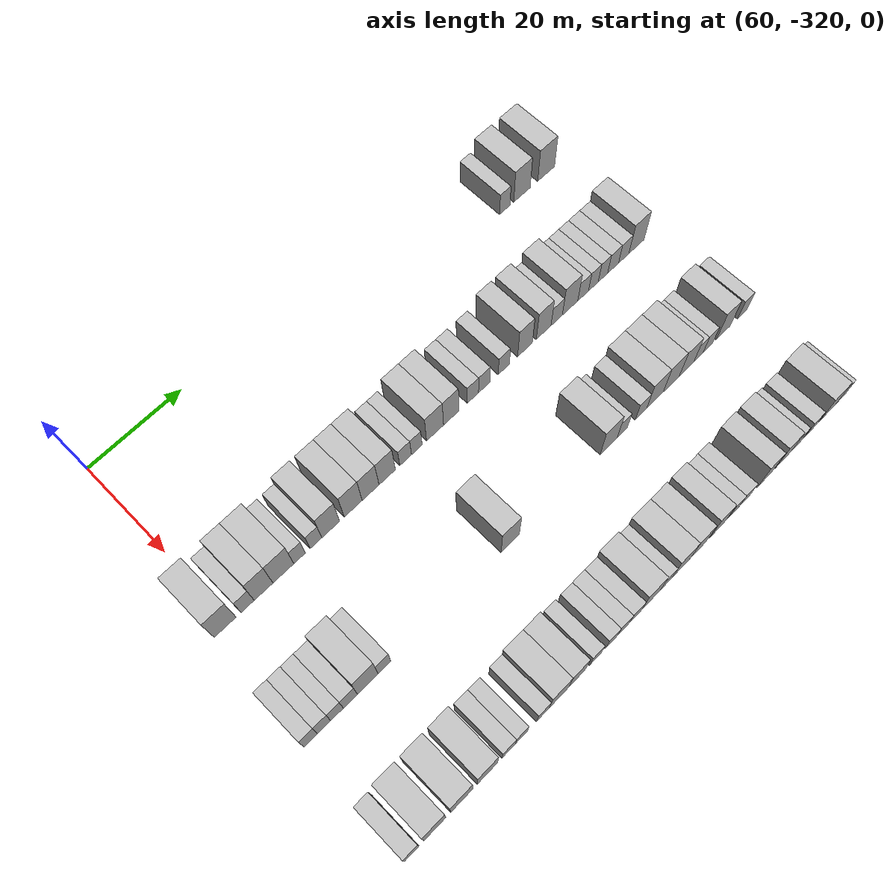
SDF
<sdf version="1.6">
 <world name="default">
  <model name="building_396">
   <static>1</static>
   <pose>69.0000 -236.1862 0 0.000000 0.000000 0.000000</pose>
   <link name="link">
    <pose>0 0 3.00 0 0 0</pose>
    <collision name="collision"><geometry><box><size>10.0000 2.6819 6.0000</size></box></geometry></collision>
    <visual name="visual">
     <cast_shadows>0</cast_shadows>
     <geometry><box><size>10.0000 2.6819 6.0000</size></box></geometry>
     <material>
      <script>
       <uri>model://HANNAS_wall/materials/scripts</uri>
       <uri>model://HANNAS_wall/materials/textures</uri>
       <name>vrc/HANNAS_wall</name>
      </script>
     </material>
    </visual>
   </link>
  </model>
  <model name="building_397">
   <static>1</static>
   <pose>69.0000 -231.6980 0 0.000000 0.000000 0.000000</pose>
   <link name="link">
    <pose>0 0 4.50 0 0 0</pose>
    <collision name="collision"><geometry><box><size>10.0000 4.2945 9.0000</size></box></geometry></collision>
    <visual name="visual">
     <cast_shadows>0</cast_shadows>
     <geometry><box><size>10.0000 4.2945 9.0000</size></box></geometry>
     <material>
      <script>
       <uri>model://HANNAS_wall/materials/scripts</uri>
       <uri>model://HANNAS_wall/materials/textures</uri>
       <name>vrc/HANNAS_wall</name>
      </script>
     </material>
    </visual>
   </link>
  </model>
  <model name="building_398">
   <static>1</static>
   <pose>69.0000 -225.3103 0 0.000000 0.000000 0.000000</pose>
   <link name="link">
    <pose>0 0 4.50 0 0 0</pose>
    <collision name="collision"><geometry><box><size>10.0000 4.4809 9.0000</size></box></geometry></collision>
    <visual name="visual">
     <cast_shadows>0</cast_shadows>
     <geometry><box><size>10.0000 4.4809 9.0000</size></box></geometry>
     <material>
      <script>
       <uri>model://HANNAS_wall/materials/scripts</uri>
       <uri>model://HANNAS_wall/materials/textures</uri>
       <name>vrc/HANNAS_wall</name>
      </script>
     </material>
    </visual>
   </link>
  </model>
  <model name="building_553">
   <static>1</static>
   <pose>91.0000 -321.1045 0 0.000000 0.000000 0.000000</pose>
   <link name="link">
    <pose>0 0 4.50 0 0 0</pose>
    <collision name="collision"><geometry><box><size>10.0000 4.4478 9.0000</size></box></geometry></collision>
    <visual name="visual">
     <cast_shadows>0</cast_shadows>
     <geometry><box><size>10.0000 4.4478 9.0000</size></box></geometry>
     <material>
      <script>
       <uri>model://HANNAS_wall/materials/scripts</uri>
       <uri>model://HANNAS_wall/materials/textures</uri>
       <name>vrc/HANNAS_wall</name>
      </script>
     </material>
    </visual>
   </link>
  </model>
  <model name="building_554">
   <static>1</static>
   <pose>91.0000 -316.5286 0 0.000000 0.000000 0.000000</pose>
   <link name="link">
    <pose>0 0 3.00 0 0 0</pose>
    <collision name="collision"><geometry><box><size>10.0000 2.7039 6.0000</size></box></geometry></collision>
    <visual name="visual">
     <cast_shadows>0</cast_shadows>
     <geometry><box><size>10.0000 2.7039 6.0000</size></box></geometry>
     <material>
      <script>
       <uri>model://HANNAS_wall/materials/scripts</uri>
       <uri>model://HANNAS_wall/materials/textures</uri>
       <name>vrc/HANNAS_wall</name>
      </script>
     </material>
    </visual>
   </link>
  </model>
  <model name="building_555">
   <static>1</static>
   <pose>91.0000 -313.2276 0 0.000000 0.000000 0.000000</pose>
   <link name="link">
    <pose>0 0 4.50 0 0 0</pose>
    <collision name="collision"><geometry><box><size>10.0000 3.8981 9.0000</size></box></geometry></collision>
    <visual name="visual">
     <cast_shadows>0</cast_shadows>
     <geometry><box><size>10.0000 3.8981 9.0000</size></box></geometry>
     <material>
      <script>
       <uri>model://HANNAS_wall/materials/scripts</uri>
       <uri>model://HANNAS_wall/materials/textures</uri>
       <name>vrc/HANNAS_wall</name>
      </script>
     </material>
    </visual>
   </link>
  </model>
  <model name="building_556">
   <static>1</static>
   <pose>91.0000 -309.0797 0 0.000000 0.000000 0.000000</pose>
   <link name="link">
    <pose>0 0 4.50 0 0 0</pose>
    <collision name="collision"><geometry><box><size>10.0000 4.3976 9.0000</size></box></geometry></collision>
    <visual name="visual">
     <cast_shadows>0</cast_shadows>
     <geometry><box><size>10.0000 4.3976 9.0000</size></box></geometry>
     <material>
      <script>
       <uri>model://HANNAS_wall/materials/scripts</uri>
       <uri>model://HANNAS_wall/materials/textures</uri>
       <name>vrc/HANNAS_wall</name>
      </script>
     </material>
    </visual>
   </link>
  </model>
  <model name="building_557">
   <static>1</static>
   <pose>91.0000 -305.6493 0 0.000000 0.000000 0.000000</pose>
   <link name="link">
    <pose>0 0 3.00 0 0 0</pose>
    <collision name="collision"><geometry><box><size>10.0000 2.4632 6.0000</size></box></geometry></collision>
    <visual name="visual">
     <cast_shadows>0</cast_shadows>
     <geometry><box><size>10.0000 2.4632 6.0000</size></box></geometry>
     <material>
      <script>
       <uri>model://HANNAS_wall/materials/scripts</uri>
       <uri>model://HANNAS_wall/materials/textures</uri>
       <name>vrc/HANNAS_wall</name>
      </script>
     </material>
    </visual>
   </link>
  </model>
  <model name="building_558">
   <static>1</static>
   <pose>91.0000 -302.1671 0 0.000000 0.000000 0.000000</pose>
   <link name="link">
    <pose>0 0 3.00 0 0 0</pose>
    <collision name="collision"><geometry><box><size>10.0000 2.5014 6.0000</size></box></geometry></collision>
    <visual name="visual">
     <cast_shadows>0</cast_shadows>
     <geometry><box><size>10.0000 2.5014 6.0000</size></box></geometry>
     <material>
      <script>
       <uri>model://HANNAS_wall/materials/scripts</uri>
       <uri>model://HANNAS_wall/materials/textures</uri>
       <name>vrc/HANNAS_wall</name>
      </script>
     </material>
    </visual>
   </link>
  </model>
  <model name="building_559">
   <static>1</static>
   <pose>91.0000 -298.9748 0 0.000000 0.000000 0.000000</pose>
   <link name="link">
    <pose>0 0 4.50 0 0 0</pose>
    <collision name="collision"><geometry><box><size>10.0000 3.8832 9.0000</size></box></geometry></collision>
    <visual name="visual">
     <cast_shadows>0</cast_shadows>
     <geometry><box><size>10.0000 3.8832 9.0000</size></box></geometry>
     <material>
      <script>
       <uri>model://HANNAS_wall/materials/scripts</uri>
       <uri>model://HANNAS_wall/materials/textures</uri>
       <name>vrc/HANNAS_wall</name>
      </script>
     </material>
    </visual>
   </link>
  </model>
  <model name="building_560">
   <static>1</static>
   <pose>91.0000 -294.0656 0 0.000000 0.000000 0.000000</pose>
   <link name="link">
    <pose>0 0 4.50 0 0 0</pose>
    <collision name="collision"><geometry><box><size>10.0000 3.9353 9.0000</size></box></geometry></collision>
    <visual name="visual">
     <cast_shadows>0</cast_shadows>
     <geometry><box><size>10.0000 3.9353 9.0000</size></box></geometry>
     <material>
      <script>
       <uri>model://HANNAS_wall/materials/scripts</uri>
       <uri>model://HANNAS_wall/materials/textures</uri>
       <name>vrc/HANNAS_wall</name>
      </script>
     </material>
    </visual>
   </link>
  </model>
  <model name="building_561">
   <static>1</static>
   <pose>91.0000 -290.2150 0 0.000000 0.000000 0.000000</pose>
   <link name="link">
    <pose>0 0 4.50 0 0 0</pose>
    <collision name="collision"><geometry><box><size>10.0000 3.7659 9.0000</size></box></geometry></collision>
    <visual name="visual">
     <cast_shadows>0</cast_shadows>
     <geometry><box><size>10.0000 3.7659 9.0000</size></box></geometry>
     <material>
      <script>
       <uri>model://HANNAS_wall/materials/scripts</uri>
       <uri>model://HANNAS_wall/materials/textures</uri>
       <name>vrc/HANNAS_wall</name>
      </script>
     </material>
    </visual>
   </link>
  </model>
  <model name="building_562">
   <static>1</static>
   <pose>91.0000 -286.4882 0 0.000000 0.000000 0.000000</pose>
   <link name="link">
    <pose>0 0 4.50 0 0 0</pose>
    <collision name="collision"><geometry><box><size>10.0000 3.6876 9.0000</size></box></geometry></collision>
    <visual name="visual">
     <cast_shadows>0</cast_shadows>
     <geometry><box><size>10.0000 3.6876 9.0000</size></box></geometry>
     <material>
      <script>
       <uri>model://HANNAS_wall/materials/scripts</uri>
       <uri>model://HANNAS_wall/materials/textures</uri>
       <name>vrc/HANNAS_wall</name>
      </script>
     </material>
    </visual>
   </link>
  </model>
  <model name="building_563">
   <static>1</static>
   <pose>91.0000 -282.3115 0 0.000000 0.000000 0.000000</pose>
   <link name="link">
    <pose>0 0 3.00 0 0 0</pose>
    <collision name="collision"><geometry><box><size>10.0000 2.6657 6.0000</size></box></geometry></collision>
    <visual name="visual">
     <cast_shadows>0</cast_shadows>
     <geometry><box><size>10.0000 2.6657 6.0000</size></box></geometry>
     <material>
      <script>
       <uri>model://HANNAS_wall/materials/scripts</uri>
       <uri>model://HANNAS_wall/materials/textures</uri>
       <name>vrc/HANNAS_wall</name>
      </script>
     </material>
    </visual>
   </link>
  </model>
  <model name="building_564">
   <static>1</static>
   <pose>91.0000 -279.7541 0 0.000000 0.000000 0.000000</pose>
   <link name="link">
    <pose>0 0 3.00 0 0 0</pose>
    <collision name="collision"><geometry><box><size>10.0000 2.4491 6.0000</size></box></geometry></collision>
    <visual name="visual">
     <cast_shadows>0</cast_shadows>
     <geometry><box><size>10.0000 2.4491 6.0000</size></box></geometry>
     <material>
      <script>
       <uri>model://HANNAS_wall/materials/scripts</uri>
       <uri>model://HANNAS_wall/materials/textures</uri>
       <name>vrc/HANNAS_wall</name>
      </script>
     </material>
    </visual>
   </link>
  </model>
  <model name="building_565">
   <static>1</static>
   <pose>91.0000 -275.5521 0 0.000000 0.000000 0.000000</pose>
   <link name="link">
    <pose>0 0 4.50 0 0 0</pose>
    <collision name="collision"><geometry><box><size>10.0000 3.9550 9.0000</size></box></geometry></collision>
    <visual name="visual">
     <cast_shadows>0</cast_shadows>
     <geometry><box><size>10.0000 3.9550 9.0000</size></box></geometry>
     <material>
      <script>
       <uri>model://HANNAS_wall/materials/scripts</uri>
       <uri>model://HANNAS_wall/materials/textures</uri>
       <name>vrc/HANNAS_wall</name>
      </script>
     </material>
    </visual>
   </link>
  </model>
  <model name="building_566">
   <static>1</static>
   <pose>91.0000 -271.7664 0 0.000000 0.000000 0.000000</pose>
   <link name="link">
    <pose>0 0 4.50 0 0 0</pose>
    <collision name="collision"><geometry><box><size>10.0000 3.6163 9.0000</size></box></geometry></collision>
    <visual name="visual">
     <cast_shadows>0</cast_shadows>
     <geometry><box><size>10.0000 3.6163 9.0000</size></box></geometry>
     <material>
      <script>
       <uri>model://HANNAS_wall/materials/scripts</uri>
       <uri>model://HANNAS_wall/materials/textures</uri>
       <name>vrc/HANNAS_wall</name>
      </script>
     </material>
    </visual>
   </link>
  </model>
  <model name="building_567">
   <static>1</static>
   <pose>91.0000 -266.6282 0 0.000000 0.000000 0.000000</pose>
   <link name="link">
    <pose>0 0 3.00 0 0 0</pose>
    <collision name="collision"><geometry><box><size>10.0000 2.6601 6.0000</size></box></geometry></collision>
    <visual name="visual">
     <cast_shadows>0</cast_shadows>
     <geometry><box><size>10.0000 2.6601 6.0000</size></box></geometry>
     <material>
      <script>
       <uri>model://HANNAS_wall/materials/scripts</uri>
       <uri>model://HANNAS_wall/materials/textures</uri>
       <name>vrc/HANNAS_wall</name>
      </script>
     </material>
    </visual>
   </link>
  </model>
  <model name="building_568">
   <static>1</static>
   <pose>91.0000 -263.9202 0 0.000000 0.000000 0.000000</pose>
   <link name="link">
    <pose>0 0 3.00 0 0 0</pose>
    <collision name="collision"><geometry><box><size>10.0000 2.7560 6.0000</size></box></geometry></collision>
    <visual name="visual">
     <cast_shadows>0</cast_shadows>
     <geometry><box><size>10.0000 2.7560 6.0000</size></box></geometry>
     <material>
      <script>
       <uri>model://HANNAS_wall/materials/scripts</uri>
       <uri>model://HANNAS_wall/materials/textures</uri>
       <name>vrc/HANNAS_wall</name>
      </script>
     </material>
    </visual>
   </link>
  </model>
  <model name="building_569">
   <static>1</static>
   <pose>91.0000 -259.1785 0 0.000000 0.000000 0.000000</pose>
   <link name="link">
    <pose>0 0 3.00 0 0 0</pose>
    <collision name="collision"><geometry><box><size>10.0000 2.7274 6.0000</size></box></geometry></collision>
    <visual name="visual">
     <cast_shadows>0</cast_shadows>
     <geometry><box><size>10.0000 2.7274 6.0000</size></box></geometry>
     <material>
      <script>
       <uri>model://HANNAS_wall/materials/scripts</uri>
       <uri>model://HANNAS_wall/materials/textures</uri>
       <name>vrc/HANNAS_wall</name>
      </script>
     </material>
    </visual>
   </link>
  </model>
  <model name="building_570">
   <static>1</static>
   <pose>91.0000 -253.9969 0 0.000000 0.000000 0.000000</pose>
   <link name="link">
    <pose>0 0 4.50 0 0 0</pose>
    <collision name="collision"><geometry><box><size>10.0000 3.6359 9.0000</size></box></geometry></collision>
    <visual name="visual">
     <cast_shadows>0</cast_shadows>
     <geometry><box><size>10.0000 3.6359 9.0000</size></box></geometry>
     <material>
      <script>
       <uri>model://HANNAS_wall/materials/scripts</uri>
       <uri>model://HANNAS_wall/materials/textures</uri>
       <name>vrc/HANNAS_wall</name>
      </script>
     </material>
    </visual>
   </link>
  </model>
  <model name="building_571">
   <static>1</static>
   <pose>91.0000 -249.3434 0 0.000000 0.000000 0.000000</pose>
   <link name="link">
    <pose>0 0 4.50 0 0 0</pose>
    <collision name="collision"><geometry><box><size>10.0000 3.6710 9.0000</size></box></geometry></collision>
    <visual name="visual">
     <cast_shadows>0</cast_shadows>
     <geometry><box><size>10.0000 3.6710 9.0000</size></box></geometry>
     <material>
      <script>
       <uri>model://HANNAS_wall/materials/scripts</uri>
       <uri>model://HANNAS_wall/materials/textures</uri>
       <name>vrc/HANNAS_wall</name>
      </script>
     </material>
    </visual>
   </link>
  </model>
  <model name="building_572">
   <static>1</static>
   <pose>91.0000 -246.0819 0 0.000000 0.000000 0.000000</pose>
   <link name="link">
    <pose>0 0 3.00 0 0 0</pose>
    <collision name="collision"><geometry><box><size>10.0000 2.8520 6.0000</size></box></geometry></collision>
    <visual name="visual">
     <cast_shadows>0</cast_shadows>
     <geometry><box><size>10.0000 2.8520 6.0000</size></box></geometry>
     <material>
      <script>
       <uri>model://HANNAS_wall/materials/scripts</uri>
       <uri>model://HANNAS_wall/materials/textures</uri>
       <name>vrc/HANNAS_wall</name>
      </script>
     </material>
    </visual>
   </link>
  </model>
  <model name="building_573">
   <static>1</static>
   <pose>91.0000 -242.6725 0 0.000000 0.000000 0.000000</pose>
   <link name="link">
    <pose>0 0 4.50 0 0 0</pose>
    <collision name="collision"><geometry><box><size>10.0000 3.9669 9.0000</size></box></geometry></collision>
    <visual name="visual">
     <cast_shadows>0</cast_shadows>
     <geometry><box><size>10.0000 3.9669 9.0000</size></box></geometry>
     <material>
      <script>
       <uri>model://HANNAS_wall/materials/scripts</uri>
       <uri>model://HANNAS_wall/materials/textures</uri>
       <name>vrc/HANNAS_wall</name>
      </script>
     </material>
    </visual>
   </link>
  </model>
  <model name="building_574">
   <static>1</static>
   <pose>91.0000 -239.3024 0 0.000000 0.000000 0.000000</pose>
   <link name="link">
    <pose>0 0 3.00 0 0 0</pose>
    <collision name="collision"><geometry><box><size>10.0000 2.7734 6.0000</size></box></geometry></collision>
    <visual name="visual">
     <cast_shadows>0</cast_shadows>
     <geometry><box><size>10.0000 2.7734 6.0000</size></box></geometry>
     <material>
      <script>
       <uri>model://HANNAS_wall/materials/scripts</uri>
       <uri>model://HANNAS_wall/materials/textures</uri>
       <name>vrc/HANNAS_wall</name>
      </script>
     </material>
    </visual>
   </link>
  </model>
  <model name="building_575">
   <static>1</static>
   <pose>91.0000 -236.6583 0 0.000000 0.000000 0.000000</pose>
   <link name="link">
    <pose>0 0 3.00 0 0 0</pose>
    <collision name="collision"><geometry><box><size>10.0000 2.5148 6.0000</size></box></geometry></collision>
    <visual name="visual">
     <cast_shadows>0</cast_shadows>
     <geometry><box><size>10.0000 2.5148 6.0000</size></box></geometry>
     <material>
      <script>
       <uri>model://HANNAS_wall/materials/scripts</uri>
       <uri>model://HANNAS_wall/materials/textures</uri>
       <name>vrc/HANNAS_wall</name>
      </script>
     </material>
    </visual>
   </link>
  </model>
  <model name="building_576">
   <static>1</static>
   <pose>91.0000 -234.1624 0 0.000000 0.000000 0.000000</pose>
   <link name="link">
    <pose>0 0 3.00 0 0 0</pose>
    <collision name="collision"><geometry><box><size>10.0000 2.4770 6.0000</size></box></geometry></collision>
    <visual name="visual">
     <cast_shadows>0</cast_shadows>
     <geometry><box><size>10.0000 2.4770 6.0000</size></box></geometry>
     <material>
      <script>
       <uri>model://HANNAS_wall/materials/scripts</uri>
       <uri>model://HANNAS_wall/materials/textures</uri>
       <name>vrc/HANNAS_wall</name>
      </script>
     </material>
    </visual>
   </link>
  </model>
  <model name="building_577">
   <static>1</static>
   <pose>91.0000 -231.4938 0 0.000000 0.000000 0.000000</pose>
   <link name="link">
    <pose>0 0 3.00 0 0 0</pose>
    <collision name="collision"><geometry><box><size>10.0000 2.8602 6.0000</size></box></geometry></collision>
    <visual name="visual">
     <cast_shadows>0</cast_shadows>
     <geometry><box><size>10.0000 2.8602 6.0000</size></box></geometry>
     <material>
      <script>
       <uri>model://HANNAS_wall/materials/scripts</uri>
       <uri>model://HANNAS_wall/materials/textures</uri>
       <name>vrc/HANNAS_wall</name>
      </script>
     </material>
    </visual>
   </link>
  </model>
  <model name="building_578">
   <static>1</static>
   <pose>91.0000 -228.6935 0 0.000000 0.000000 0.000000</pose>
   <link name="link">
    <pose>0 0 3.00 0 0 0</pose>
    <collision name="collision"><geometry><box><size>10.0000 2.7405 6.0000</size></box></geometry></collision>
    <visual name="visual">
     <cast_shadows>0</cast_shadows>
     <geometry><box><size>10.0000 2.7405 6.0000</size></box></geometry>
     <material>
      <script>
       <uri>model://HANNAS_wall/materials/scripts</uri>
       <uri>model://HANNAS_wall/materials/textures</uri>
       <name>vrc/HANNAS_wall</name>
      </script>
     </material>
    </visual>
   </link>
  </model>
  <model name="building_579">
   <static>1</static>
   <pose>91.0000 -225.2813 0 0.000000 0.000000 0.000000</pose>
   <link name="link">
    <pose>0 0 4.50 0 0 0</pose>
    <collision name="collision"><geometry><box><size>10.0000 4.0839 9.0000</size></box></geometry></collision>
    <visual name="visual">
     <cast_shadows>0</cast_shadows>
     <geometry><box><size>10.0000 4.0839 9.0000</size></box></geometry>
     <material>
      <script>
       <uri>model://HANNAS_wall/materials/scripts</uri>
       <uri>model://HANNAS_wall/materials/textures</uri>
       <name>vrc/HANNAS_wall</name>
      </script>
     </material>
    </visual>
   </link>
  </model>
  <model name="building_745">
   <static>1</static>
   <pose>113.0000 -323.1824 0 0.000000 0.000000 0.000000</pose>
   <link name="link">
    <pose>0 0 3.00 0 0 0</pose>
    <collision name="collision"><geometry><box><size>10.0000 2.6926 6.0000</size></box></geometry></collision>
    <visual name="visual">
     <cast_shadows>0</cast_shadows>
     <geometry><box><size>10.0000 2.6926 6.0000</size></box></geometry>
     <material>
      <script>
       <uri>model://HANNAS_wall/materials/scripts</uri>
       <uri>model://HANNAS_wall/materials/textures</uri>
       <name>vrc/HANNAS_wall</name>
      </script>
     </material>
    </visual>
   </link>
  </model>
  <model name="building_746">
   <static>1</static>
   <pose>113.0000 -320.5082 0 0.000000 0.000000 0.000000</pose>
   <link name="link">
    <pose>0 0 3.00 0 0 0</pose>
    <collision name="collision"><geometry><box><size>10.0000 2.6559 6.0000</size></box></geometry></collision>
    <visual name="visual">
     <cast_shadows>0</cast_shadows>
     <geometry><box><size>10.0000 2.6559 6.0000</size></box></geometry>
     <material>
      <script>
       <uri>model://HANNAS_wall/materials/scripts</uri>
       <uri>model://HANNAS_wall/materials/textures</uri>
       <name>vrc/HANNAS_wall</name>
      </script>
     </material>
    </visual>
   </link>
  </model>
  <model name="building_747">
   <static>1</static>
   <pose>113.0000 -317.8884 0 0.000000 0.000000 0.000000</pose>
   <link name="link">
    <pose>0 0 3.00 0 0 0</pose>
    <collision name="collision"><geometry><box><size>10.0000 2.5836 6.0000</size></box></geometry></collision>
    <visual name="visual">
     <cast_shadows>0</cast_shadows>
     <geometry><box><size>10.0000 2.5836 6.0000</size></box></geometry>
     <material>
      <script>
       <uri>model://HANNAS_wall/materials/scripts</uri>
       <uri>model://HANNAS_wall/materials/textures</uri>
       <name>vrc/HANNAS_wall</name>
      </script>
     </material>
    </visual>
   </link>
  </model>
  <model name="building_748">
   <static>1</static>
   <pose>113.0000 -315.1580 0 0.000000 0.000000 0.000000</pose>
   <link name="link">
    <pose>0 0 3.00 0 0 0</pose>
    <collision name="collision"><geometry><box><size>10.0000 2.8773 6.0000</size></box></geometry></collision>
    <visual name="visual">
     <cast_shadows>0</cast_shadows>
     <geometry><box><size>10.0000 2.8773 6.0000</size></box></geometry>
     <material>
      <script>
       <uri>model://HANNAS_wall/materials/scripts</uri>
       <uri>model://HANNAS_wall/materials/textures</uri>
       <name>vrc/HANNAS_wall</name>
      </script>
     </material>
    </visual>
   </link>
  </model>
  <model name="building_749">
   <static>1</static>
   <pose>113.0000 -311.5731 0 0.000000 0.000000 0.000000</pose>
   <link name="link">
    <pose>0 0 4.50 0 0 0</pose>
    <collision name="collision"><geometry><box><size>10.0000 4.2927 9.0000</size></box></geometry></collision>
    <visual name="visual">
     <cast_shadows>0</cast_shadows>
     <geometry><box><size>10.0000 4.2927 9.0000</size></box></geometry>
     <material>
      <script>
       <uri>model://HANNAS_wall/materials/scripts</uri>
       <uri>model://HANNAS_wall/materials/textures</uri>
       <name>vrc/HANNAS_wall</name>
      </script>
     </material>
    </visual>
   </link>
  </model>
  <model name="building_750">
   <static>1</static>
   <pose>113.0000 -308.0757 0 0.000000 0.000000 0.000000</pose>
   <link name="link">
    <pose>0 0 3.00 0 0 0</pose>
    <collision name="collision"><geometry><box><size>10.0000 2.7019 6.0000</size></box></geometry></collision>
    <visual name="visual">
     <cast_shadows>0</cast_shadows>
     <geometry><box><size>10.0000 2.7019 6.0000</size></box></geometry>
     <material>
      <script>
       <uri>model://HANNAS_wall/materials/scripts</uri>
       <uri>model://HANNAS_wall/materials/textures</uri>
       <name>vrc/HANNAS_wall</name>
      </script>
     </material>
    </visual>
   </link>
  </model>
  <model name="building_751">
   <static>1</static>
   <pose>113.0000 -280.4572 0 0.000000 0.000000 0.000000</pose>
   <link name="link">
    <pose>0 0 4.50 0 0 0</pose>
    <collision name="collision"><geometry><box><size>10.0000 4.1784 9.0000</size></box></geometry></collision>
    <visual name="visual">
     <cast_shadows>0</cast_shadows>
     <geometry><box><size>10.0000 4.1784 9.0000</size></box></geometry>
     <material>
      <script>
       <uri>model://HANNAS_wall/materials/scripts</uri>
       <uri>model://HANNAS_wall/materials/textures</uri>
       <name>vrc/HANNAS_wall</name>
      </script>
     </material>
    </visual>
   </link>
  </model>
  <model name="building_752">
   <static>1</static>
   <pose>113.0000 -257.0394 0 0.000000 0.000000 0.000000</pose>
   <link name="link">
    <pose>0 0 4.50 0 0 0</pose>
    <collision name="collision"><geometry><box><size>10.0000 4.2191 9.0000</size></box></geometry></collision>
    <visual name="visual">
     <cast_shadows>0</cast_shadows>
     <geometry><box><size>10.0000 4.2191 9.0000</size></box></geometry>
     <material>
      <script>
       <uri>model://HANNAS_wall/materials/scripts</uri>
       <uri>model://HANNAS_wall/materials/textures</uri>
       <name>vrc/HANNAS_wall</name>
      </script>
     </material>
    </visual>
   </link>
  </model>
  <model name="building_753">
   <static>1</static>
   <pose>113.0000 -253.6898 0 0.000000 0.000000 0.000000</pose>
   <link name="link">
    <pose>0 0 3.00 0 0 0</pose>
    <collision name="collision"><geometry><box><size>10.0000 2.4802 6.0000</size></box></geometry></collision>
    <visual name="visual">
     <cast_shadows>0</cast_shadows>
     <geometry><box><size>10.0000 2.4802 6.0000</size></box></geometry>
     <material>
      <script>
       <uri>model://HANNAS_wall/materials/scripts</uri>
       <uri>model://HANNAS_wall/materials/textures</uri>
       <name>vrc/HANNAS_wall</name>
      </script>
     </material>
    </visual>
   </link>
  </model>
  <model name="building_754">
   <static>1</static>
   <pose>113.0000 -249.0412 0 0.000000 0.000000 0.000000</pose>
   <link name="link">
    <pose>0 0 3.00 0 0 0</pose>
    <collision name="collision"><geometry><box><size>10.0000 2.8171 6.0000</size></box></geometry></collision>
    <visual name="visual">
     <cast_shadows>0</cast_shadows>
     <geometry><box><size>10.0000 2.8171 6.0000</size></box></geometry>
     <material>
      <script>
       <uri>model://HANNAS_wall/materials/scripts</uri>
       <uri>model://HANNAS_wall/materials/textures</uri>
       <name>vrc/HANNAS_wall</name>
      </script>
     </material>
    </visual>
   </link>
  </model>
  <model name="building_755">
   <static>1</static>
   <pose>113.0000 -245.5284 0 0.000000 0.000000 0.000000</pose>
   <link name="link">
    <pose>0 0 4.50 0 0 0</pose>
    <collision name="collision"><geometry><box><size>10.0000 4.2085 9.0000</size></box></geometry></collision>
    <visual name="visual">
     <cast_shadows>0</cast_shadows>
     <geometry><box><size>10.0000 4.2085 9.0000</size></box></geometry>
     <material>
      <script>
       <uri>model://HANNAS_wall/materials/scripts</uri>
       <uri>model://HANNAS_wall/materials/textures</uri>
       <name>vrc/HANNAS_wall</name>
      </script>
     </material>
    </visual>
   </link>
  </model>
  <model name="building_756">
   <static>1</static>
   <pose>113.0000 -241.3600 0 0.000000 0.000000 0.000000</pose>
   <link name="link">
    <pose>0 0 4.50 0 0 0</pose>
    <collision name="collision"><geometry><box><size>10.0000 4.1283 9.0000</size></box></geometry></collision>
    <visual name="visual">
     <cast_shadows>0</cast_shadows>
     <geometry><box><size>10.0000 4.1283 9.0000</size></box></geometry>
     <material>
      <script>
       <uri>model://HANNAS_wall/materials/scripts</uri>
       <uri>model://HANNAS_wall/materials/textures</uri>
       <name>vrc/HANNAS_wall</name>
      </script>
     </material>
    </visual>
   </link>
  </model>
  <model name="building_757">
   <static>1</static>
   <pose>113.0000 -237.3916 0 0.000000 0.000000 0.000000</pose>
   <link name="link">
    <pose>0 0 4.50 0 0 0</pose>
    <collision name="collision"><geometry><box><size>10.0000 3.8085 9.0000</size></box></geometry></collision>
    <visual name="visual">
     <cast_shadows>0</cast_shadows>
     <geometry><box><size>10.0000 3.8085 9.0000</size></box></geometry>
     <material>
      <script>
       <uri>model://HANNAS_wall/materials/scripts</uri>
       <uri>model://HANNAS_wall/materials/textures</uri>
       <name>vrc/HANNAS_wall</name>
      </script>
     </material>
    </visual>
   </link>
  </model>
  <model name="building_758">
   <static>1</static>
   <pose>113.0000 -234.2842 0 0.000000 0.000000 0.000000</pose>
   <link name="link">
    <pose>0 0 3.00 0 0 0</pose>
    <collision name="collision"><geometry><box><size>10.0000 2.4064 6.0000</size></box></geometry></collision>
    <visual name="visual">
     <cast_shadows>0</cast_shadows>
     <geometry><box><size>10.0000 2.4064 6.0000</size></box></geometry>
     <material>
      <script>
       <uri>model://HANNAS_wall/materials/scripts</uri>
       <uri>model://HANNAS_wall/materials/textures</uri>
       <name>vrc/HANNAS_wall</name>
      </script>
     </material>
    </visual>
   </link>
  </model>
  <model name="building_759">
   <static>1</static>
   <pose>113.0000 -231.8033 0 0.000000 0.000000 0.000000</pose>
   <link name="link">
    <pose>0 0 3.00 0 0 0</pose>
    <collision name="collision"><geometry><box><size>10.0000 2.5555 6.0000</size></box></geometry></collision>
    <visual name="visual">
     <cast_shadows>0</cast_shadows>
     <geometry><box><size>10.0000 2.5555 6.0000</size></box></geometry>
     <material>
      <script>
       <uri>model://HANNAS_wall/materials/scripts</uri>
       <uri>model://HANNAS_wall/materials/textures</uri>
       <name>vrc/HANNAS_wall</name>
      </script>
     </material>
    </visual>
   </link>
  </model>
  <model name="building_760">
   <static>1</static>
   <pose>113.0000 -227.6621 0 0.000000 0.000000 0.000000</pose>
   <link name="link">
    <pose>0 0 4.50 0 0 0</pose>
    <collision name="collision"><geometry><box><size>10.0000 3.7268 9.0000</size></box></geometry></collision>
    <visual name="visual">
     <cast_shadows>0</cast_shadows>
     <geometry><box><size>10.0000 3.7268 9.0000</size></box></geometry>
     <material>
      <script>
       <uri>model://HANNAS_wall/materials/scripts</uri>
       <uri>model://HANNAS_wall/materials/textures</uri>
       <name>vrc/HANNAS_wall</name>
      </script>
     </material>
    </visual>
   </link>
  </model>
  <model name="building_761">
   <static>1</static>
   <pose>113.0000 -222.5280 0 0.000000 0.000000 0.000000</pose>
   <link name="link">
    <pose>0 0 3.00 0 0 0</pose>
    <collision name="collision"><geometry><box><size>10.0000 2.5413 6.0000</size></box></geometry></collision>
    <visual name="visual">
     <cast_shadows>0</cast_shadows>
     <geometry><box><size>10.0000 2.5413 6.0000</size></box></geometry>
     <material>
      <script>
       <uri>model://HANNAS_wall/materials/scripts</uri>
       <uri>model://HANNAS_wall/materials/textures</uri>
       <name>vrc/HANNAS_wall</name>
      </script>
     </material>
    </visual>
   </link>
  </model>
  <model name="building_934">
   <static>1</static>
   <pose>135.0000 -323.5894 0 0.000000 0.000000 0.000000</pose>
   <link name="link">
    <pose>0 0 3.00 0 0 0</pose>
    <collision name="collision"><geometry><box><size>10.0000 2.8747 6.0000</size></box></geometry></collision>
    <visual name="visual">
     <cast_shadows>0</cast_shadows>
     <geometry><box><size>10.0000 2.8747 6.0000</size></box></geometry>
     <material>
      <script>
       <uri>model://HANNAS_wall/materials/scripts</uri>
       <uri>model://HANNAS_wall/materials/textures</uri>
       <name>vrc/HANNAS_wall</name>
      </script>
     </material>
    </visual>
   </link>
  </model>
  <model name="building_935">
   <static>1</static>
   <pose>135.0000 -318.9397 0 0.000000 0.000000 0.000000</pose>
   <link name="link">
    <pose>0 0 4.50 0 0 0</pose>
    <collision name="collision"><geometry><box><size>10.0000 4.4247 9.0000</size></box></geometry></collision>
    <visual name="visual">
     <cast_shadows>0</cast_shadows>
     <geometry><box><size>10.0000 4.4247 9.0000</size></box></geometry>
     <material>
      <script>
       <uri>model://HANNAS_wall/materials/scripts</uri>
       <uri>model://HANNAS_wall/materials/textures</uri>
       <name>vrc/HANNAS_wall</name>
      </script>
     </material>
    </visual>
   </link>
  </model>
  <model name="building_936">
   <static>1</static>
   <pose>135.0000 -313.4860 0 0.000000 0.000000 0.000000</pose>
   <link name="link">
    <pose>0 0 4.50 0 0 0</pose>
    <collision name="collision"><geometry><box><size>10.0000 4.4829 9.0000</size></box></geometry></collision>
    <visual name="visual">
     <cast_shadows>0</cast_shadows>
     <geometry><box><size>10.0000 4.4829 9.0000</size></box></geometry>
     <material>
      <script>
       <uri>model://HANNAS_wall/materials/scripts</uri>
       <uri>model://HANNAS_wall/materials/textures</uri>
       <name>vrc/HANNAS_wall</name>
      </script>
     </material>
    </visual>
   </link>
  </model>
  <model name="building_937">
   <static>1</static>
   <pose>135.0000 -308.1405 0 0.000000 0.000000 0.000000</pose>
   <link name="link">
    <pose>0 0 4.50 0 0 0</pose>
    <collision name="collision"><geometry><box><size>10.0000 4.2081 9.0000</size></box></geometry></collision>
    <visual name="visual">
     <cast_shadows>0</cast_shadows>
     <geometry><box><size>10.0000 4.2081 9.0000</size></box></geometry>
     <material>
      <script>
       <uri>model://HANNAS_wall/materials/scripts</uri>
       <uri>model://HANNAS_wall/materials/textures</uri>
       <name>vrc/HANNAS_wall</name>
      </script>
     </material>
    </visual>
   </link>
  </model>
  <model name="building_938">
   <static>1</static>
   <pose>135.0000 -303.6091 0 0.000000 0.000000 0.000000</pose>
   <link name="link">
    <pose>0 0 3.00 0 0 0</pose>
    <collision name="collision"><geometry><box><size>10.0000 2.8547 6.0000</size></box></geometry></collision>
    <visual name="visual">
     <cast_shadows>0</cast_shadows>
     <geometry><box><size>10.0000 2.8547 6.0000</size></box></geometry>
     <material>
      <script>
       <uri>model://HANNAS_wall/materials/scripts</uri>
       <uri>model://HANNAS_wall/materials/textures</uri>
       <name>vrc/HANNAS_wall</name>
      </script>
     </material>
    </visual>
   </link>
  </model>
  <model name="building_939">
   <static>1</static>
   <pose>135.0000 -300.8909 0 0.000000 0.000000 0.000000</pose>
   <link name="link">
    <pose>0 0 3.00 0 0 0</pose>
    <collision name="collision"><geometry><box><size>10.0000 2.5818 6.0000</size></box></geometry></collision>
    <visual name="visual">
     <cast_shadows>0</cast_shadows>
     <geometry><box><size>10.0000 2.5818 6.0000</size></box></geometry>
     <material>
      <script>
       <uri>model://HANNAS_wall/materials/scripts</uri>
       <uri>model://HANNAS_wall/materials/textures</uri>
       <name>vrc/HANNAS_wall</name>
      </script>
     </material>
    </visual>
   </link>
  </model>
  <model name="building_940">
   <static>1</static>
   <pose>135.0000 -296.2398 0 0.000000 0.000000 0.000000</pose>
   <link name="link">
    <pose>0 0 3.00 0 0 0</pose>
    <collision name="collision"><geometry><box><size>10.0000 2.7203 6.0000</size></box></geometry></collision>
    <visual name="visual">
     <cast_shadows>0</cast_shadows>
     <geometry><box><size>10.0000 2.7203 6.0000</size></box></geometry>
     <material>
      <script>
       <uri>model://HANNAS_wall/materials/scripts</uri>
       <uri>model://HANNAS_wall/materials/textures</uri>
       <name>vrc/HANNAS_wall</name>
      </script>
     </material>
    </visual>
   </link>
  </model>
  <model name="building_941">
   <static>1</static>
   <pose>135.0000 -292.7283 0 0.000000 0.000000 0.000000</pose>
   <link name="link">
    <pose>0 0 4.50 0 0 0</pose>
    <collision name="collision"><geometry><box><size>10.0000 4.3026 9.0000</size></box></geometry></collision>
    <visual name="visual">
     <cast_shadows>0</cast_shadows>
     <geometry><box><size>10.0000 4.3026 9.0000</size></box></geometry>
     <material>
      <script>
       <uri>model://HANNAS_wall/materials/scripts</uri>
       <uri>model://HANNAS_wall/materials/textures</uri>
       <name>vrc/HANNAS_wall</name>
      </script>
     </material>
    </visual>
   </link>
  </model>
  <model name="building_942">
   <static>1</static>
   <pose>135.0000 -288.7439 0 0.000000 0.000000 0.000000</pose>
   <link name="link">
    <pose>0 0 4.50 0 0 0</pose>
    <collision name="collision"><geometry><box><size>10.0000 3.6663 9.0000</size></box></geometry></collision>
    <visual name="visual">
     <cast_shadows>0</cast_shadows>
     <geometry><box><size>10.0000 3.6663 9.0000</size></box></geometry>
     <material>
      <script>
       <uri>model://HANNAS_wall/materials/scripts</uri>
       <uri>model://HANNAS_wall/materials/textures</uri>
       <name>vrc/HANNAS_wall</name>
      </script>
     </material>
    </visual>
   </link>
  </model>
  <model name="building_943">
   <static>1</static>
   <pose>135.0000 -284.5948 0 0.000000 0.000000 0.000000</pose>
   <link name="link">
    <pose>0 0 3.00 0 0 0</pose>
    <collision name="collision"><geometry><box><size>10.0000 2.6319 6.0000</size></box></geometry></collision>
    <visual name="visual">
     <cast_shadows>0</cast_shadows>
     <geometry><box><size>10.0000 2.6319 6.0000</size></box></geometry>
     <material>
      <script>
       <uri>model://HANNAS_wall/materials/scripts</uri>
       <uri>model://HANNAS_wall/materials/textures</uri>
       <name>vrc/HANNAS_wall</name>
      </script>
     </material>
    </visual>
   </link>
  </model>
  <model name="building_944">
   <static>1</static>
   <pose>135.0000 -280.9404 0 0.000000 0.000000 0.000000</pose>
   <link name="link">
    <pose>0 0 3.00 0 0 0</pose>
    <collision name="collision"><geometry><box><size>10.0000 2.6769 6.0000</size></box></geometry></collision>
    <visual name="visual">
     <cast_shadows>0</cast_shadows>
     <geometry><box><size>10.0000 2.6769 6.0000</size></box></geometry>
     <material>
      <script>
       <uri>model://HANNAS_wall/materials/scripts</uri>
       <uri>model://HANNAS_wall/materials/textures</uri>
       <name>vrc/HANNAS_wall</name>
      </script>
     </material>
    </visual>
   </link>
  </model>
  <model name="building_945">
   <static>1</static>
   <pose>135.0000 -278.2242 0 0.000000 0.000000 0.000000</pose>
   <link name="link">
    <pose>0 0 3.00 0 0 0</pose>
    <collision name="collision"><geometry><box><size>10.0000 2.7554 6.0000</size></box></geometry></collision>
    <visual name="visual">
     <cast_shadows>0</cast_shadows>
     <geometry><box><size>10.0000 2.7554 6.0000</size></box></geometry>
     <material>
      <script>
       <uri>model://HANNAS_wall/materials/scripts</uri>
       <uri>model://HANNAS_wall/materials/textures</uri>
       <name>vrc/HANNAS_wall</name>
      </script>
     </material>
    </visual>
   </link>
  </model>
  <model name="building_946">
   <static>1</static>
   <pose>135.0000 -275.4208 0 0.000000 0.000000 0.000000</pose>
   <link name="link">
    <pose>0 0 3.00 0 0 0</pose>
    <collision name="collision"><geometry><box><size>10.0000 2.8514 6.0000</size></box></geometry></collision>
    <visual name="visual">
     <cast_shadows>0</cast_shadows>
     <geometry><box><size>10.0000 2.8514 6.0000</size></box></geometry>
     <material>
      <script>
       <uri>model://HANNAS_wall/materials/scripts</uri>
       <uri>model://HANNAS_wall/materials/textures</uri>
       <name>vrc/HANNAS_wall</name>
      </script>
     </material>
    </visual>
   </link>
  </model>
  <model name="building_947">
   <static>1</static>
   <pose>135.0000 -271.8165 0 0.000000 0.000000 0.000000</pose>
   <link name="link">
    <pose>0 0 4.50 0 0 0</pose>
    <collision name="collision"><geometry><box><size>10.0000 4.3572 9.0000</size></box></geometry></collision>
    <visual name="visual">
     <cast_shadows>0</cast_shadows>
     <geometry><box><size>10.0000 4.3572 9.0000</size></box></geometry>
     <material>
      <script>
       <uri>model://HANNAS_wall/materials/scripts</uri>
       <uri>model://HANNAS_wall/materials/textures</uri>
       <name>vrc/HANNAS_wall</name>
      </script>
     </material>
    </visual>
   </link>
  </model>
  <model name="building_948">
   <static>1</static>
   <pose>135.0000 -268.1596 0 0.000000 0.000000 0.000000</pose>
   <link name="link">
    <pose>0 0 3.00 0 0 0</pose>
    <collision name="collision"><geometry><box><size>10.0000 2.9565 6.0000</size></box></geometry></collision>
    <visual name="visual">
     <cast_shadows>0</cast_shadows>
     <geometry><box><size>10.0000 2.9565 6.0000</size></box></geometry>
     <material>
      <script>
       <uri>model://HANNAS_wall/materials/scripts</uri>
       <uri>model://HANNAS_wall/materials/textures</uri>
       <name>vrc/HANNAS_wall</name>
      </script>
     </material>
    </visual>
   </link>
  </model>
  <model name="building_949">
   <static>1</static>
   <pose>135.0000 -264.4903 0 0.000000 0.000000 0.000000</pose>
   <link name="link">
    <pose>0 0 4.50 0 0 0</pose>
    <collision name="collision"><geometry><box><size>10.0000 4.3822 9.0000</size></box></geometry></collision>
    <visual name="visual">
     <cast_shadows>0</cast_shadows>
     <geometry><box><size>10.0000 4.3822 9.0000</size></box></geometry>
     <material>
      <script>
       <uri>model://HANNAS_wall/materials/scripts</uri>
       <uri>model://HANNAS_wall/materials/textures</uri>
       <name>vrc/HANNAS_wall</name>
      </script>
     </material>
    </visual>
   </link>
  </model>
  <model name="building_950">
   <static>1</static>
   <pose>135.0000 -260.3595 0 0.000000 0.000000 0.000000</pose>
   <link name="link">
    <pose>0 0 4.50 0 0 0</pose>
    <collision name="collision"><geometry><box><size>10.0000 3.8792 9.0000</size></box></geometry></collision>
    <visual name="visual">
     <cast_shadows>0</cast_shadows>
     <geometry><box><size>10.0000 3.8792 9.0000</size></box></geometry>
     <material>
      <script>
       <uri>model://HANNAS_wall/materials/scripts</uri>
       <uri>model://HANNAS_wall/materials/textures</uri>
       <name>vrc/HANNAS_wall</name>
      </script>
     </material>
    </visual>
   </link>
  </model>
  <model name="building_951">
   <static>1</static>
   <pose>135.0000 -255.6062 0 0.000000 0.000000 0.000000</pose>
   <link name="link">
    <pose>0 0 4.50 0 0 0</pose>
    <collision name="collision"><geometry><box><size>10.0000 3.6274 9.0000</size></box></geometry></collision>
    <visual name="visual">
     <cast_shadows>0</cast_shadows>
     <geometry><box><size>10.0000 3.6274 9.0000</size></box></geometry>
     <material>
      <script>
       <uri>model://HANNAS_wall/materials/scripts</uri>
       <uri>model://HANNAS_wall/materials/textures</uri>
       <name>vrc/HANNAS_wall</name>
      </script>
     </material>
    </visual>
   </link>
  </model>
  <model name="building_952">
   <static>1</static>
   <pose>135.0000 -251.5337 0 0.000000 0.000000 0.000000</pose>
   <link name="link">
    <pose>0 0 3.00 0 0 0</pose>
    <collision name="collision"><geometry><box><size>10.0000 2.5178 6.0000</size></box></geometry></collision>
    <visual name="visual">
     <cast_shadows>0</cast_shadows>
     <geometry><box><size>10.0000 2.5178 6.0000</size></box></geometry>
     <material>
      <script>
       <uri>model://HANNAS_wall/materials/scripts</uri>
       <uri>model://HANNAS_wall/materials/textures</uri>
       <name>vrc/HANNAS_wall</name>
      </script>
     </material>
    </visual>
   </link>
  </model>
  <model name="building_953">
   <static>1</static>
   <pose>135.0000 -248.8845 0 0.000000 0.000000 0.000000</pose>
   <link name="link">
    <pose>0 0 3.00 0 0 0</pose>
    <collision name="collision"><geometry><box><size>10.0000 2.7805 6.0000</size></box></geometry></collision>
    <visual name="visual">
     <cast_shadows>0</cast_shadows>
     <geometry><box><size>10.0000 2.7805 6.0000</size></box></geometry>
     <material>
      <script>
       <uri>model://HANNAS_wall/materials/scripts</uri>
       <uri>model://HANNAS_wall/materials/textures</uri>
       <name>vrc/HANNAS_wall</name>
      </script>
     </material>
    </visual>
   </link>
  </model>
  <model name="building_954">
   <static>1</static>
   <pose>135.0000 -243.6512 0 0.000000 0.000000 0.000000</pose>
   <link name="link">
    <pose>0 0 4.50 0 0 0</pose>
    <collision name="collision"><geometry><box><size>10.0000 3.6861 9.0000</size></box></geometry></collision>
    <visual name="visual">
     <cast_shadows>0</cast_shadows>
     <geometry><box><size>10.0000 3.6861 9.0000</size></box></geometry>
     <material>
      <script>
       <uri>model://HANNAS_wall/materials/scripts</uri>
       <uri>model://HANNAS_wall/materials/textures</uri>
       <name>vrc/HANNAS_wall</name>
      </script>
     </material>
    </visual>
   </link>
  </model>
  <model name="building_955">
   <static>1</static>
   <pose>135.0000 -238.9125 0 0.000000 0.000000 0.000000</pose>
   <link name="link">
    <pose>0 0 4.50 0 0 0</pose>
    <collision name="collision"><geometry><box><size>10.0000 3.7914 9.0000</size></box></geometry></collision>
    <visual name="visual">
     <cast_shadows>0</cast_shadows>
     <geometry><box><size>10.0000 3.7914 9.0000</size></box></geometry>
     <material>
      <script>
       <uri>model://HANNAS_wall/materials/scripts</uri>
       <uri>model://HANNAS_wall/materials/textures</uri>
       <name>vrc/HANNAS_wall</name>
      </script>
     </material>
    </visual>
   </link>
  </model>
  <model name="building_956">
   <static>1</static>
   <pose>135.0000 -235.5820 0 0.000000 0.000000 0.000000</pose>
   <link name="link">
    <pose>0 0 3.00 0 0 0</pose>
    <collision name="collision"><geometry><box><size>10.0000 2.8696 6.0000</size></box></geometry></collision>
    <visual name="visual">
     <cast_shadows>0</cast_shadows>
     <geometry><box><size>10.0000 2.8696 6.0000</size></box></geometry>
     <material>
      <script>
       <uri>model://HANNAS_wall/materials/scripts</uri>
       <uri>model://HANNAS_wall/materials/textures</uri>
       <name>vrc/HANNAS_wall</name>
      </script>
     </material>
    </visual>
   </link>
  </model>
  <model name="building_957">
   <static>1</static>
   <pose>135.0000 -231.7064 0 0.000000 0.000000 0.000000</pose>
   <link name="link">
    <pose>0 0 3.00 0 0 0</pose>
    <collision name="collision"><geometry><box><size>10.0000 2.8817 6.0000</size></box></geometry></collision>
    <visual name="visual">
     <cast_shadows>0</cast_shadows>
     <geometry><box><size>10.0000 2.8817 6.0000</size></box></geometry>
     <material>
      <script>
       <uri>model://HANNAS_wall/materials/scripts</uri>
       <uri>model://HANNAS_wall/materials/textures</uri>
       <name>vrc/HANNAS_wall</name>
      </script>
     </material>
    </visual>
   </link>
  </model>
  <model name="building_958">
   <static>1</static>
   <pose>135.0000 -227.0492 0 0.000000 0.000000 0.000000</pose>
   <link name="link">
    <pose>0 0 4.50 0 0 0</pose>
    <collision name="collision"><geometry><box><size>10.0000 4.4328 9.0000</size></box></geometry></collision>
    <visual name="visual">
     <cast_shadows>0</cast_shadows>
     <geometry><box><size>10.0000 4.4328 9.0000</size></box></geometry>
     <material>
      <script>
       <uri>model://HANNAS_wall/materials/scripts</uri>
       <uri>model://HANNAS_wall/materials/textures</uri>
       <name>vrc/HANNAS_wall</name>
      </script>
     </material>
    </visual>
   </link>
  </model>
  <model name="building_959">
   <static>1</static>
   <pose>135.0000 -223.5568 0 0.000000 0.000000 0.000000</pose>
   <link name="link">
    <pose>0 0 3.00 0 0 0</pose>
    <collision name="collision"><geometry><box><size>10.0000 2.5520 6.0000</size></box></geometry></collision>
    <visual name="visual">
     <cast_shadows>0</cast_shadows>
     <geometry><box><size>10.0000 2.5520 6.0000</size></box></geometry>
     <material>
      <script>
       <uri>model://HANNAS_wall/materials/scripts</uri>
       <uri>model://HANNAS_wall/materials/textures</uri>
       <name>vrc/HANNAS_wall</name>
      </script>
     </material>
    </visual>
   </link>
  </model>
 </world>
</sdf>
